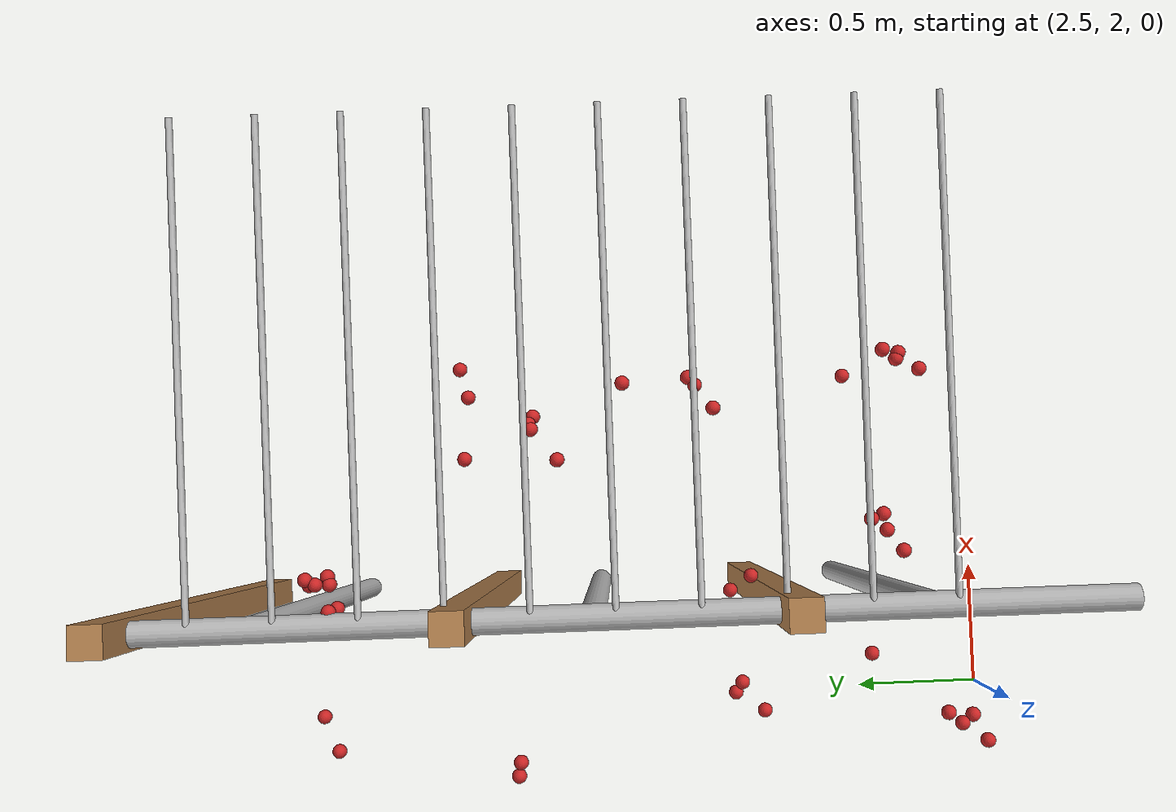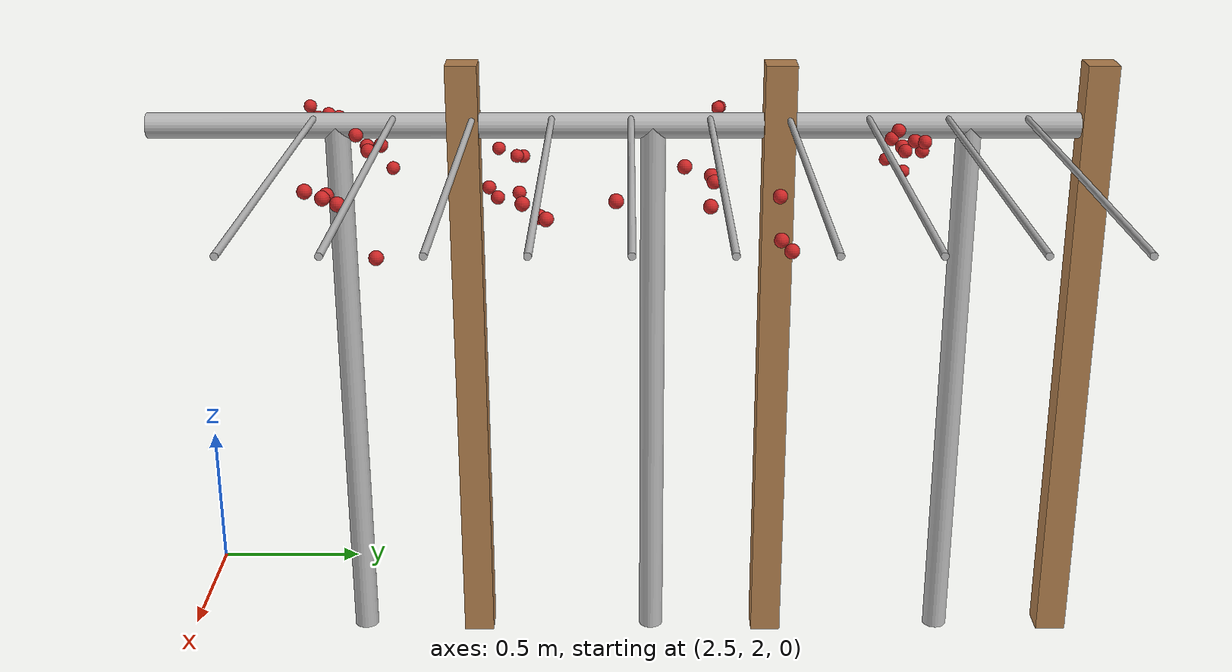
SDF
<sdf version="1.4">
 <model name="pergola">
  <include><name>post_9</name><pose>3.0 3.0 0 0 0 0</pose><uri>model://post</uri></include>
  <include><name>post_10</name><pose>3.0 4.0 0 0 0 0</pose><uri>model://post</uri></include>
  <include><name>post_11</name><pose>3.0 5.0 0 0 0 0</pose><uri>model://post</uri></include>
  <include><name>tree_7</name><pose>3.0 2.6 0 0 0 0</pose><uri>model://tree_trunk</uri></include>
  <include><name>tree_8</name><pose>3.0 3.6 0 0 0 0</pose><uri>model://tree_trunk</uri></include>
  <include><name>tree_9</name><pose>3.0 4.6 0 0 0 0</pose><uri>model://tree_trunk</uri></include>
  <link name="baseBranch_7">
   <pose>3.0 2.5 1.8 1.5707963267948966 0 0</pose>
   <collision name="collision">
    <geometry><cylinder><radius>0.04</radius><length>1.0</length></cylinder></geometry>
   </collision>
   <visual name="visual">
    <geometry><cylinder><radius>0.04</radius><length>1.0</length></cylinder></geometry>
    <material>
     <script>
      <uri>model://tree_trunk/materials/scripts</uri>
      <uri>model://tree_trunk/materials/textures</uri>
      <name>Tree/Bark</name>
     </script>
    </material>
   </visual>
   <inertial>
    <mass>10</mass>
    <inertia>
     <ixx>0.8373333333333332</ixx>
     <ixy>0.0</ixy>
     <ixz>0.0</ixz>
     <iyy>0.8373333333333332</iyy>
     <iyz>0.0</iyz>
     <izz>0.008</izz>
    </inertia>
   </inertial>
  </link>
  <link name="baseBranch_8">
   <pose>3.0 3.5 1.8 1.5707963267948966 0 0</pose>
   <collision name="collision">
    <geometry><cylinder><radius>0.04</radius><length>1.0</length></cylinder></geometry>
   </collision>
   <visual name="visual">
    <geometry><cylinder><radius>0.04</radius><length>1.0</length></cylinder></geometry>
    <material>
     <script>
      <uri>model://tree_trunk/materials/scripts</uri>
      <uri>model://tree_trunk/materials/textures</uri>
      <name>Tree/Bark</name>
     </script>
    </material>
   </visual>
   <inertial>
    <mass>10</mass>
    <inertia>
     <ixx>0.8373333333333332</ixx>
     <ixy>0.0</ixy>
     <ixz>0.0</ixz>
     <iyy>0.8373333333333332</iyy>
     <iyz>0.0</iyz>
     <izz>0.008</izz>
    </inertia>
   </inertial>
  </link>
  <link name="baseBranch_9">
   <pose>3.0 4.5 1.8 1.5707963267948966 0 0</pose>
   <collision name="collision">
    <geometry><cylinder><radius>0.04</radius><length>1.0</length></cylinder></geometry>
   </collision>
   <visual name="visual">
    <geometry><cylinder><radius>0.04</radius><length>1.0</length></cylinder></geometry>
    <material>
     <script>
      <uri>model://tree_trunk/materials/scripts</uri>
      <uri>model://tree_trunk/materials/textures</uri>
      <name>Tree/Bark</name>
     </script>
    </material>
   </visual>
   <inertial>
    <mass>10</mass>
    <inertia>
     <ixx>0.8373333333333332</ixx>
     <ixy>0.0</ixy>
     <ixz>0.0</ixz>
     <iyy>0.8373333333333332</iyy>
     <iyz>0.0</iyz>
     <izz>0.008</izz>
    </inertia>
   </inertial>
  </link>
  <link name="vine_60">
   <pose>3.75 2.53 1.85 0 1.5374753309166493 0</pose>
   <collision name="collision">
    <geometry><cylinder><radius>0.01</radius><length>1.5008331019803633</length></cylinder></geometry>
   </collision>
   <visual name="visual">
    <geometry><cylinder><radius>0.01</radius><length>1.5008331019803633</length></cylinder></geometry>
    <material>
     <script>
      <uri>model://tree_trunk/materials/scripts</uri>
      <uri>model://tree_trunk/materials/textures</uri>
      <name>Tree/Bark</name>
     </script>
    </material>
   </visual>
   <inertial>
    <mass>5</mass>
    <inertia>
     <ixx>0.9386666666666668</ixx>
     <ixy>0.0</ixy>
     <ixz>0.0</ixz>
     <iyy>0.9386666666666668</iyy>
     <iyz>0.0</iyz>
     <izz>0.00025</izz>
    </inertia>
   </inertial>
  </link>
  <link name="vine_62">
   <pose>3.75 2.78 1.85 0 1.5374753309166493 0</pose>
   <collision name="collision">
    <geometry><cylinder><radius>0.01</radius><length>1.5008331019803633</length></cylinder></geometry>
   </collision>
   <visual name="visual">
    <geometry><cylinder><radius>0.01</radius><length>1.5008331019803633</length></cylinder></geometry>
    <material>
     <script>
      <uri>model://tree_trunk/materials/scripts</uri>
      <uri>model://tree_trunk/materials/textures</uri>
      <name>Tree/Bark</name>
     </script>
    </material>
   </visual>
   <inertial>
    <mass>5</mass>
    <inertia>
     <ixx>0.9386666666666668</ixx>
     <ixy>0.0</ixy>
     <ixz>0.0</ixz>
     <iyy>0.9386666666666668</iyy>
     <iyz>0.0</iyz>
     <izz>0.00025</izz>
    </inertia>
   </inertial>
  </link>
  <link name="vine_64">
   <pose>3.75 3.03 1.85 0 1.5374753309166493 0</pose>
   <collision name="collision">
    <geometry><cylinder><radius>0.01</radius><length>1.5008331019803633</length></cylinder></geometry>
   </collision>
   <visual name="visual">
    <geometry><cylinder><radius>0.01</radius><length>1.5008331019803633</length></cylinder></geometry>
    <material>
     <script>
      <uri>model://tree_trunk/materials/scripts</uri>
      <uri>model://tree_trunk/materials/textures</uri>
      <name>Tree/Bark</name>
     </script>
    </material>
   </visual>
   <inertial>
    <mass>5</mass>
    <inertia>
     <ixx>0.9386666666666668</ixx>
     <ixy>0.0</ixy>
     <ixz>0.0</ixz>
     <iyy>0.9386666666666668</iyy>
     <iyz>0.0</iyz>
     <izz>0.00025</izz>
    </inertia>
   </inertial>
  </link>
  <link name="vine_66">
   <pose>3.75 3.28 1.85 0 1.5374753309166493 0</pose>
   <collision name="collision">
    <geometry><cylinder><radius>0.01</radius><length>1.5008331019803633</length></cylinder></geometry>
   </collision>
   <visual name="visual">
    <geometry><cylinder><radius>0.01</radius><length>1.5008331019803633</length></cylinder></geometry>
    <material>
     <script>
      <uri>model://tree_trunk/materials/scripts</uri>
      <uri>model://tree_trunk/materials/textures</uri>
      <name>Tree/Bark</name>
     </script>
    </material>
   </visual>
   <inertial>
    <mass>5</mass>
    <inertia>
     <ixx>0.9386666666666668</ixx>
     <ixy>0.0</ixy>
     <ixz>0.0</ixz>
     <iyy>0.9386666666666668</iyy>
     <iyz>0.0</iyz>
     <izz>0.00025</izz>
    </inertia>
   </inertial>
  </link>
  <link name="vine_68">
   <pose>3.75 3.53 1.85 0 1.5374753309166493 0</pose>
   <collision name="collision">
    <geometry><cylinder><radius>0.01</radius><length>1.5008331019803633</length></cylinder></geometry>
   </collision>
   <visual name="visual">
    <geometry><cylinder><radius>0.01</radius><length>1.5008331019803633</length></cylinder></geometry>
    <material>
     <script>
      <uri>model://tree_trunk/materials/scripts</uri>
      <uri>model://tree_trunk/materials/textures</uri>
      <name>Tree/Bark</name>
     </script>
    </material>
   </visual>
   <inertial>
    <mass>5</mass>
    <inertia>
     <ixx>0.9386666666666668</ixx>
     <ixy>0.0</ixy>
     <ixz>0.0</ixz>
     <iyy>0.9386666666666668</iyy>
     <iyz>0.0</iyz>
     <izz>0.00025</izz>
    </inertia>
   </inertial>
  </link>
  <link name="vine_70">
   <pose>3.75 3.78 1.85 0 1.5374753309166493 0</pose>
   <collision name="collision">
    <geometry><cylinder><radius>0.01</radius><length>1.5008331019803633</length></cylinder></geometry>
   </collision>
   <visual name="visual">
    <geometry><cylinder><radius>0.01</radius><length>1.5008331019803633</length></cylinder></geometry>
    <material>
     <script>
      <uri>model://tree_trunk/materials/scripts</uri>
      <uri>model://tree_trunk/materials/textures</uri>
      <name>Tree/Bark</name>
     </script>
    </material>
   </visual>
   <inertial>
    <mass>5</mass>
    <inertia>
     <ixx>0.9386666666666668</ixx>
     <ixy>0.0</ixy>
     <ixz>0.0</ixz>
     <iyy>0.9386666666666668</iyy>
     <iyz>0.0</iyz>
     <izz>0.00025</izz>
    </inertia>
   </inertial>
  </link>
  <link name="vine_72">
   <pose>3.75 4.03 1.85 0 1.5374753309166493 0</pose>
   <collision name="collision">
    <geometry><cylinder><radius>0.01</radius><length>1.5008331019803633</length></cylinder></geometry>
   </collision>
   <visual name="visual">
    <geometry><cylinder><radius>0.01</radius><length>1.5008331019803633</length></cylinder></geometry>
    <material>
     <script>
      <uri>model://tree_trunk/materials/scripts</uri>
      <uri>model://tree_trunk/materials/textures</uri>
      <name>Tree/Bark</name>
     </script>
    </material>
   </visual>
   <inertial>
    <mass>5</mass>
    <inertia>
     <ixx>0.9386666666666668</ixx>
     <ixy>0.0</ixy>
     <ixz>0.0</ixz>
     <iyy>0.9386666666666668</iyy>
     <iyz>0.0</iyz>
     <izz>0.00025</izz>
    </inertia>
   </inertial>
  </link>
  <link name="vine_74">
   <pose>3.75 4.28 1.85 0 1.5374753309166493 0</pose>
   <collision name="collision">
    <geometry><cylinder><radius>0.01</radius><length>1.5008331019803633</length></cylinder></geometry>
   </collision>
   <visual name="visual">
    <geometry><cylinder><radius>0.01</radius><length>1.5008331019803633</length></cylinder></geometry>
    <material>
     <script>
      <uri>model://tree_trunk/materials/scripts</uri>
      <uri>model://tree_trunk/materials/textures</uri>
      <name>Tree/Bark</name>
     </script>
    </material>
   </visual>
   <inertial>
    <mass>5</mass>
    <inertia>
     <ixx>0.9386666666666668</ixx>
     <ixy>0.0</ixy>
     <ixz>0.0</ixz>
     <iyy>0.9386666666666668</iyy>
     <iyz>0.0</iyz>
     <izz>0.00025</izz>
    </inertia>
   </inertial>
  </link>
  <link name="vine_76">
   <pose>3.75 4.53 1.85 0 1.5374753309166493 0</pose>
   <collision name="collision">
    <geometry><cylinder><radius>0.01</radius><length>1.5008331019803633</length></cylinder></geometry>
   </collision>
   <visual name="visual">
    <geometry><cylinder><radius>0.01</radius><length>1.5008331019803633</length></cylinder></geometry>
    <material>
     <script>
      <uri>model://tree_trunk/materials/scripts</uri>
      <uri>model://tree_trunk/materials/textures</uri>
      <name>Tree/Bark</name>
     </script>
    </material>
   </visual>
   <inertial>
    <mass>5</mass>
    <inertia>
     <ixx>0.9386666666666668</ixx>
     <ixy>0.0</ixy>
     <ixz>0.0</ixz>
     <iyy>0.9386666666666668</iyy>
     <iyz>0.0</iyz>
     <izz>0.00025</izz>
    </inertia>
   </inertial>
  </link>
  <link name="vine_78">
   <pose>3.75 4.78 1.85 0 1.5374753309166493 0</pose>
   <collision name="collision">
    <geometry><cylinder><radius>0.01</radius><length>1.5008331019803633</length></cylinder></geometry>
   </collision>
   <visual name="visual">
    <geometry><cylinder><radius>0.01</radius><length>1.5008331019803633</length></cylinder></geometry>
    <material>
     <script>
      <uri>model://tree_trunk/materials/scripts</uri>
      <uri>model://tree_trunk/materials/textures</uri>
      <name>Tree/Bark</name>
     </script>
    </material>
   </visual>
   <inertial>
    <mass>5</mass>
    <inertia>
     <ixx>0.9386666666666668</ixx>
     <ixy>0.0</ixy>
     <ixz>0.0</ixz>
     <iyy>0.9386666666666668</iyy>
     <iyz>0.0</iyz>
     <izz>0.00025</izz>
    </inertia>
   </inertial>
  </link>
  <link name="fruit_1">
   <pose>2.8404596890096316 2.7504183131941358 1.6137637719881317 0 0 0</pose>
   <collision name="fruit_collision_1"><geometry><sphere><radius>0.022</radius></sphere></geometry></collision>
   <visual name="visual">
    <geometry><sphere><radius>0.022</radius></sphere></geometry>
    <material><script><name>Gazebo/Red</name></script></material>
   </visual>
   <inertial>
    <mass>0.05</mass>
    <inertia>
     <ixx>9.679999999999999e-06</ixx>
     <ixy>0.0</ixy>
     <ixz>0.0</ixz>
     <iyy>9.679999999999999e-06</iyy>
     <iyz>0.0</iyz>
     <izz>9.679999999999999e-06</izz>
    </inertia>
   </inertial>
   <sensor name="fruit_contact_1" type="contact">
    <plugin name="contact_plugin_1" filename="libcontact_plugin.so"/>
    <contact><collision>fruit_collision_1</collision><topic>fruit_contact_topic_1</topic></contact>
   </sensor>
  </link>
  <link name="fruit_39">
   <pose>3.1608196033691667 2.6821426553138044 1.811208368263747 0 0 0</pose>
   <collision name="fruit_collision_39"><geometry><sphere><radius>0.022</radius></sphere></geometry></collision>
   <visual name="visual">
    <geometry><sphere><radius>0.022</radius></sphere></geometry>
    <material><script><name>Gazebo/Red</name></script></material>
   </visual>
   <inertial>
    <mass>0.05</mass>
    <inertia>
     <ixx>9.679999999999999e-06</ixx>
     <ixy>0.0</ixy>
     <ixz>0.0</ixz>
     <iyy>9.679999999999999e-06</iyy>
     <iyz>0.0</iyz>
     <izz>9.679999999999999e-06</izz>
    </inertia>
   </inertial>
   <sensor name="fruit_contact_39" type="contact">
    <plugin name="contact_plugin_39" filename="libcontact_plugin.so"/>
    <contact><collision>fruit_collision_39</collision><topic>fruit_contact_topic_39</topic></contact>
   </sensor>
  </link>
  <link name="fruit_41">
   <pose>3.693520088226629 2.6087132468782963 1.7918743351676032 0 0 0</pose>
   <collision name="fruit_collision_41"><geometry><sphere><radius>0.022</radius></sphere></geometry></collision>
   <visual name="visual">
    <geometry><sphere><radius>0.022</radius></sphere></geometry>
    <material><script><name>Gazebo/Red</name></script></material>
   </visual>
   <inertial>
    <mass>0.05</mass>
    <inertia>
     <ixx>9.679999999999999e-06</ixx>
     <ixy>0.0</ixy>
     <ixz>0.0</ixz>
     <iyy>9.679999999999999e-06</iyy>
     <iyz>0.0</iyz>
     <izz>9.679999999999999e-06</izz>
    </inertia>
   </inertial>
   <sensor name="fruit_contact_41" type="contact">
    <plugin name="contact_plugin_41" filename="libcontact_plugin.so"/>
    <contact><collision>fruit_collision_41</collision><topic>fruit_contact_topic_41</topic></contact>
   </sensor>
  </link>
  <link name="fruit_49">
   <pose>3.5982800474163854 3.759283060290533 1.7176966146065369 0 0 0</pose>
   <collision name="fruit_collision_49"><geometry><sphere><radius>0.022</radius></sphere></geometry></collision>
   <visual name="visual">
    <geometry><sphere><radius>0.022</radius></sphere></geometry>
    <material><script><name>Gazebo/Red</name></script></material>
   </visual>
   <inertial>
    <mass>0.05</mass>
    <inertia>
     <ixx>9.679999999999999e-06</ixx>
     <ixy>0.0</ixy>
     <ixz>0.0</ixz>
     <iyy>9.679999999999999e-06</iyy>
     <iyz>0.0</iyz>
     <izz>9.679999999999999e-06</izz>
    </inertia>
   </inertial>
   <sensor name="fruit_contact_49" type="contact">
    <plugin name="contact_plugin_49" filename="libcontact_plugin.so"/>
    <contact><collision>fruit_collision_49</collision><topic>fruit_contact_topic_49</topic></contact>
   </sensor>
  </link>
  <link name="fruit_61">
   <pose>2.684382361629287 3.0879324090077183 1.637041034215435 0 0 0</pose>
   <collision name="fruit_collision_61"><geometry><sphere><radius>0.022</radius></sphere></geometry></collision>
   <visual name="visual">
    <geometry><sphere><radius>0.022</radius></sphere></geometry>
    <material><script><name>Gazebo/Red</name></script></material>
   </visual>
   <inertial>
    <mass>0.05</mass>
    <inertia>
     <ixx>9.679999999999999e-06</ixx>
     <ixy>0.0</ixy>
     <ixz>0.0</ixz>
     <iyy>9.679999999999999e-06</iyy>
     <iyz>0.0</iyz>
     <izz>9.679999999999999e-06</izz>
    </inertia>
   </inertial>
   <sensor name="fruit_contact_61" type="contact">
    <plugin name="contact_plugin_61" filename="libcontact_plugin.so"/>
    <contact><collision>fruit_collision_61</collision><topic>fruit_contact_topic_61</topic></contact>
   </sensor>
  </link>
  <link name="fruit_64">
   <pose>3.0426437467870984 4.372590305260636 1.7936738148537774 0 0 0</pose>
   <collision name="fruit_collision_64"><geometry><sphere><radius>0.022</radius></sphere></geometry></collision>
   <visual name="visual">
    <geometry><sphere><radius>0.022</radius></sphere></geometry>
    <material><script><name>Gazebo/Red</name></script></material>
   </visual>
   <inertial>
    <mass>0.05</mass>
    <inertia>
     <ixx>9.679999999999999e-06</ixx>
     <ixy>0.0</ixy>
     <ixz>0.0</ixz>
     <iyy>9.679999999999999e-06</iyy>
     <iyz>0.0</iyz>
     <izz>9.679999999999999e-06</izz>
    </inertia>
   </inertial>
   <sensor name="fruit_contact_64" type="contact">
    <plugin name="contact_plugin_64" filename="libcontact_plugin.so"/>
    <contact><collision>fruit_collision_64</collision><topic>fruit_contact_topic_64</topic></contact>
   </sensor>
  </link>
  <link name="fruit_78">
   <pose>2.995093963616755 3.075712080354329 1.5941749955122186 0 0 0</pose>
   <collision name="fruit_collision_78"><geometry><sphere><radius>0.022</radius></sphere></geometry></collision>
   <visual name="visual">
    <geometry><sphere><radius>0.022</radius></sphere></geometry>
    <material><script><name>Gazebo/Red</name></script></material>
   </visual>
   <inertial>
    <mass>0.05</mass>
    <inertia>
     <ixx>9.679999999999999e-06</ixx>
     <ixy>0.0</ixy>
     <ixz>0.0</ixz>
     <iyy>9.679999999999999e-06</iyy>
     <iyz>0.0</iyz>
     <izz>9.679999999999999e-06</izz>
    </inertia>
   </inertial>
   <sensor name="fruit_contact_78" type="contact">
    <plugin name="contact_plugin_78" filename="libcontact_plugin.so"/>
    <contact><collision>fruit_collision_78</collision><topic>fruit_contact_topic_78</topic></contact>
   </sensor>
  </link>
  <link name="fruit_90">
   <pose>2.5960231432027387 4.400098978361522 1.5735579816886696 0 0 0</pose>
   <collision name="fruit_collision_90"><geometry><sphere><radius>0.022</radius></sphere></geometry></collision>
   <visual name="visual">
    <geometry><sphere><radius>0.022</radius></sphere></geometry>
    <material><script><name>Gazebo/Red</name></script></material>
   </visual>
   <inertial>
    <mass>0.05</mass>
    <inertia>
     <ixx>9.679999999999999e-06</ixx>
     <ixy>0.0</ixy>
     <ixz>0.0</ixz>
     <iyy>9.679999999999999e-06</iyy>
     <iyz>0.0</iyz>
     <izz>9.679999999999999e-06</izz>
    </inertia>
   </inertial>
   <sensor name="fruit_contact_90" type="contact">
    <plugin name="contact_plugin_90" filename="libcontact_plugin.so"/>
    <contact><collision>fruit_collision_90</collision><topic>fruit_contact_topic_90</topic></contact>
   </sensor>
  </link>
  <link name="fruit_92">
   <pose>3.4637191765406943 3.6870472003649017 1.7978415874742324 0 0 0</pose>
   <collision name="fruit_collision_92"><geometry><sphere><radius>0.022</radius></sphere></geometry></collision>
   <visual name="visual">
    <geometry><sphere><radius>0.022</radius></sphere></geometry>
    <material><script><name>Gazebo/Red</name></script></material>
   </visual>
   <inertial>
    <mass>0.05</mass>
    <inertia>
     <ixx>9.679999999999999e-06</ixx>
     <ixy>0.0</ixy>
     <ixz>0.0</ixz>
     <iyy>9.679999999999999e-06</iyy>
     <iyz>0.0</iyz>
     <izz>9.679999999999999e-06</izz>
    </inertia>
   </inertial>
   <sensor name="fruit_contact_92" type="contact">
    <plugin name="contact_plugin_92" filename="libcontact_plugin.so"/>
    <contact><collision>fruit_collision_92</collision><topic>fruit_contact_topic_92</topic></contact>
   </sensor>
  </link>
  <link name="fruit_105">
   <pose>2.592701083632063 2.4482701544165413 1.7583066825265756 0 0 0</pose>
   <collision name="fruit_collision_105"><geometry><sphere><radius>0.022</radius></sphere></geometry></collision>
   <visual name="visual">
    <geometry><sphere><radius>0.022</radius></sphere></geometry>
    <material><script><name>Gazebo/Red</name></script></material>
   </visual>
   <inertial>
    <mass>0.05</mass>
    <inertia>
     <ixx>9.679999999999999e-06</ixx>
     <ixy>0.0</ixy>
     <ixz>0.0</ixz>
     <iyy>9.679999999999999e-06</iyy>
     <iyz>0.0</iyz>
     <izz>9.679999999999999e-06</izz>
    </inertia>
   </inertial>
   <sensor name="fruit_contact_105" type="contact">
    <plugin name="contact_plugin_105" filename="libcontact_plugin.so"/>
    <contact><collision>fruit_collision_105</collision><topic>fruit_contact_topic_105</topic></contact>
   </sensor>
  </link>
  <link name="fruit_116">
   <pose>3.6983098700964603 2.80178253190273 1.5960840665155585 0 0 0</pose>
   <collision name="fruit_collision_116"><geometry><sphere><radius>0.022</radius></sphere></geometry></collision>
   <visual name="visual">
    <geometry><sphere><radius>0.022</radius></sphere></geometry>
    <material><script><name>Gazebo/Red</name></script></material>
   </visual>
   <inertial>
    <mass>0.05</mass>
    <inertia>
     <ixx>9.679999999999999e-06</ixx>
     <ixy>0.0</ixy>
     <ixz>0.0</ixz>
     <iyy>9.679999999999999e-06</iyy>
     <iyz>0.0</iyz>
     <izz>9.679999999999999e-06</izz>
    </inertia>
   </inertial>
   <sensor name="fruit_contact_116" type="contact">
    <plugin name="contact_plugin_116" filename="libcontact_plugin.so"/>
    <contact><collision>fruit_collision_116</collision><topic>fruit_contact_topic_116</topic></contact>
   </sensor>
  </link>
  <link name="fruit_117">
   <pose>3.0498818248173087 4.351036431240473 1.769379938558252 0 0 0</pose>
   <collision name="fruit_collision_117"><geometry><sphere><radius>0.022</radius></sphere></geometry></collision>
   <visual name="visual">
    <geometry><sphere><radius>0.022</radius></sphere></geometry>
    <material><script><name>Gazebo/Red</name></script></material>
   </visual>
   <inertial>
    <mass>0.05</mass>
    <inertia>
     <ixx>9.679999999999999e-06</ixx>
     <ixy>0.0</ixy>
     <ixz>0.0</ixz>
     <iyy>9.679999999999999e-06</iyy>
     <iyz>0.0</iyz>
     <izz>9.679999999999999e-06</izz>
    </inertia>
   </inertial>
   <sensor name="fruit_contact_117" type="contact">
    <plugin name="contact_plugin_117" filename="libcontact_plugin.so"/>
    <contact><collision>fruit_collision_117</collision><topic>fruit_contact_topic_117</topic></contact>
   </sensor>
  </link>
  <link name="fruit_119">
   <pose>3.478249519949547 3.969041377311514 1.7111438282597309 0 0 0</pose>
   <collision name="fruit_collision_119"><geometry><sphere><radius>0.022</radius></sphere></geometry></collision>
   <visual name="visual">
    <geometry><sphere><radius>0.022</radius></sphere></geometry>
    <material><script><name>Gazebo/Red</name></script></material>
   </visual>
   <inertial>
    <mass>0.05</mass>
    <inertia>
     <ixx>9.679999999999999e-06</ixx>
     <ixy>0.0</ixy>
     <ixz>0.0</ixz>
     <iyy>9.679999999999999e-06</iyy>
     <iyz>0.0</iyz>
     <izz>9.679999999999999e-06</izz>
    </inertia>
   </inertial>
   <sensor name="fruit_contact_119" type="contact">
    <plugin name="contact_plugin_119" filename="libcontact_plugin.so"/>
    <contact><collision>fruit_collision_119</collision><topic>fruit_contact_topic_119</topic></contact>
   </sensor>
  </link>
  <link name="fruit_120">
   <pose>3.6864415566833038 3.4872838351079904 1.7611793115392007 0 0 0</pose>
   <collision name="fruit_collision_120"><geometry><sphere><radius>0.022</radius></sphere></geometry></collision>
   <visual name="visual">
    <geometry><sphere><radius>0.022</radius></sphere></geometry>
    <material><script><name>Gazebo/Red</name></script></material>
   </visual>
   <inertial>
    <mass>0.05</mass>
    <inertia>
     <ixx>9.679999999999999e-06</ixx>
     <ixy>0.0</ixy>
     <ixz>0.0</ixz>
     <iyy>9.679999999999999e-06</iyy>
     <iyz>0.0</iyz>
     <izz>9.679999999999999e-06</izz>
    </inertia>
   </inertial>
   <sensor name="fruit_contact_120" type="contact">
    <plugin name="contact_plugin_120" filename="libcontact_plugin.so"/>
    <contact><collision>fruit_collision_120</collision><topic>fruit_contact_topic_120</topic></contact>
   </sensor>
  </link>
  <link name="fruit_132">
   <pose>3.6702591061425687 3.9604607793327293 1.6395119791104396 0 0 0</pose>
   <collision name="fruit_collision_132"><geometry><sphere><radius>0.022</radius></sphere></geometry></collision>
   <visual name="visual">
    <geometry><sphere><radius>0.022</radius></sphere></geometry>
    <material><script><name>Gazebo/Red</name></script></material>
   </visual>
   <inertial>
    <mass>0.05</mass>
    <inertia>
     <ixx>9.679999999999999e-06</ixx>
     <ixy>0.0</ixy>
     <ixz>0.0</ixz>
     <iyy>9.679999999999999e-06</iyy>
     <iyz>0.0</iyz>
     <izz>9.679999999999999e-06</izz>
    </inertia>
   </inertial>
   <sensor name="fruit_contact_132" type="contact">
    <plugin name="contact_plugin_132" filename="libcontact_plugin.so"/>
    <contact><collision>fruit_collision_132</collision><topic>fruit_contact_topic_132</topic></contact>
   </sensor>
  </link>
  <link name="fruit_153">
   <pose>3.6044771499270003 3.216763925545594 1.7281262052518453 0 0 0</pose>
   <collision name="fruit_collision_153"><geometry><sphere><radius>0.022</radius></sphere></geometry></collision>
   <visual name="visual">
    <geometry><sphere><radius>0.022</radius></sphere></geometry>
    <material><script><name>Gazebo/Red</name></script></material>
   </visual>
   <inertial>
    <mass>0.05</mass>
    <inertia>
     <ixx>9.679999999999999e-06</ixx>
     <ixy>0.0</ixy>
     <ixz>0.0</ixz>
     <iyy>9.679999999999999e-06</iyy>
     <iyz>0.0</iyz>
     <izz>9.679999999999999e-06</izz>
    </inertia>
   </inertial>
   <sensor name="fruit_contact_153" type="contact">
    <plugin name="contact_plugin_153" filename="libcontact_plugin.so"/>
    <contact><collision>fruit_collision_153</collision><topic>fruit_contact_topic_153</topic></contact>
   </sensor>
  </link>
  <link name="fruit_155">
   <pose>3.7565413817956825 2.709785434835065 1.7740847037381535 0 0 0</pose>
   <collision name="fruit_collision_155"><geometry><sphere><radius>0.022</radius></sphere></geometry></collision>
   <visual name="visual">
    <geometry><sphere><radius>0.022</radius></sphere></geometry>
    <material><script><name>Gazebo/Red</name></script></material>
   </visual>
   <inertial>
    <mass>0.05</mass>
    <inertia>
     <ixx>9.679999999999999e-06</ixx>
     <ixy>0.0</ixy>
     <ixz>0.0</ixz>
     <iyy>9.679999999999999e-06</iyy>
     <iyz>0.0</iyz>
     <izz>9.679999999999999e-06</izz>
    </inertia>
   </inertial>
   <sensor name="fruit_contact_155" type="contact">
    <plugin name="contact_plugin_155" filename="libcontact_plugin.so"/>
    <contact><collision>fruit_collision_155</collision><topic>fruit_contact_topic_155</topic></contact>
   </sensor>
  </link>
  <link name="fruit_175">
   <pose>2.6661181144551143 2.483787317141717 1.7394267165555057 0 0 0</pose>
   <collision name="fruit_collision_175"><geometry><sphere><radius>0.022</radius></sphere></geometry></collision>
   <visual name="visual">
    <geometry><sphere><radius>0.022</radius></sphere></geometry>
    <material><script><name>Gazebo/Red</name></script></material>
   </visual>
   <inertial>
    <mass>0.05</mass>
    <inertia>
     <ixx>9.679999999999999e-06</ixx>
     <ixy>0.0</ixy>
     <ixz>0.0</ixz>
     <iyy>9.679999999999999e-06</iyy>
     <iyz>0.0</iyz>
     <izz>9.679999999999999e-06</izz>
    </inertia>
   </inertial>
   <sensor name="fruit_contact_175" type="contact">
    <plugin name="contact_plugin_175" filename="libcontact_plugin.so"/>
    <contact><collision>fruit_collision_175</collision><topic>fruit_contact_topic_175</topic></contact>
   </sensor>
  </link>
  <link name="fruit_182">
   <pose>2.6747563145880444 2.556280349706432 1.7431316514268471 0 0 0</pose>
   <collision name="fruit_collision_182"><geometry><sphere><radius>0.022</radius></sphere></geometry></collision>
   <visual name="visual">
    <geometry><sphere><radius>0.022</radius></sphere></geometry>
    <material><script><name>Gazebo/Red</name></script></material>
   </visual>
   <inertial>
    <mass>0.05</mass>
    <inertia>
     <ixx>9.679999999999999e-06</ixx>
     <ixy>0.0</ixy>
     <ixz>0.0</ixz>
     <iyy>9.679999999999999e-06</iyy>
     <iyz>0.0</iyz>
     <izz>9.679999999999999e-06</izz>
    </inertia>
   </inertial>
   <sensor name="fruit_contact_182" type="contact">
    <plugin name="contact_plugin_182" filename="libcontact_plugin.so"/>
    <contact><collision>fruit_collision_182</collision><topic>fruit_contact_topic_182</topic></contact>
   </sensor>
  </link>
  <link name="fruit_193">
   <pose>2.7397614258253697 3.1729722323586413 1.625358807292208 0 0 0</pose>
   <collision name="fruit_collision_193"><geometry><sphere><radius>0.022</radius></sphere></geometry></collision>
   <visual name="visual">
    <geometry><sphere><radius>0.022</radius></sphere></geometry>
    <material><script><name>Gazebo/Red</name></script></material>
   </visual>
   <inertial>
    <mass>0.05</mass>
    <inertia>
     <ixx>9.679999999999999e-06</ixx>
     <ixy>0.0</ixy>
     <ixz>0.0</ixz>
     <iyy>9.679999999999999e-06</iyy>
     <iyz>0.0</iyz>
     <izz>9.679999999999999e-06</izz>
    </inertia>
   </inertial>
   <sensor name="fruit_contact_193" type="contact">
    <plugin name="contact_plugin_193" filename="libcontact_plugin.so"/>
    <contact><collision>fruit_collision_193</collision><topic>fruit_contact_topic_193</topic></contact>
   </sensor>
  </link>
  <link name="fruit_210">
   <pose>3.1198911081103993 4.436996948745939 1.7495879150189233 0 0 0</pose>
   <collision name="fruit_collision_210"><geometry><sphere><radius>0.022</radius></sphere></geometry></collision>
   <visual name="visual">
    <geometry><sphere><radius>0.022</radius></sphere></geometry>
    <material><script><name>Gazebo/Red</name></script></material>
   </visual>
   <inertial>
    <mass>0.05</mass>
    <inertia>
     <ixx>9.679999999999999e-06</ixx>
     <ixy>0.0</ixy>
     <ixz>0.0</ixz>
     <iyy>9.679999999999999e-06</iyy>
     <iyz>0.0</iyz>
     <izz>9.679999999999999e-06</izz>
    </inertia>
   </inertial>
   <sensor name="fruit_contact_210" type="contact">
    <plugin name="contact_plugin_210" filename="libcontact_plugin.so"/>
    <contact><collision>fruit_collision_210</collision><topic>fruit_contact_topic_210</topic></contact>
   </sensor>
  </link>
  <link name="fruit_214">
   <pose>2.771052073645757 3.1531881053304778 1.6353907765192297 0 0 0</pose>
   <collision name="fruit_collision_214"><geometry><sphere><radius>0.022</radius></sphere></geometry></collision>
   <visual name="visual">
    <geometry><sphere><radius>0.022</radius></sphere></geometry>
    <material><script><name>Gazebo/Red</name></script></material>
   </visual>
   <inertial>
    <mass>0.05</mass>
    <inertia>
     <ixx>9.679999999999999e-06</ixx>
     <ixy>0.0</ixy>
     <ixz>0.0</ixz>
     <iyy>9.679999999999999e-06</iyy>
     <iyz>0.0</iyz>
     <izz>9.679999999999999e-06</izz>
    </inertia>
   </inertial>
   <sensor name="fruit_contact_214" type="contact">
    <plugin name="contact_plugin_214" filename="libcontact_plugin.so"/>
    <contact><collision>fruit_collision_214</collision><topic>fruit_contact_topic_214</topic></contact>
   </sensor>
  </link>
  <link name="fruit_218">
   <pose>3.5727516832720783 3.7691655702842315 1.7847965401025447 0 0 0</pose>
   <collision name="fruit_collision_218"><geometry><sphere><radius>0.022</radius></sphere></geometry></collision>
   <visual name="visual">
    <geometry><sphere><radius>0.022</radius></sphere></geometry>
    <material><script><name>Gazebo/Red</name></script></material>
   </visual>
   <inertial>
    <mass>0.05</mass>
    <inertia>
     <ixx>9.679999999999999e-06</ixx>
     <ixy>0.0</ixy>
     <ixz>0.0</ixz>
     <iyy>9.679999999999999e-06</iyy>
     <iyz>0.0</iyz>
     <izz>9.679999999999999e-06</izz>
    </inertia>
   </inertial>
   <sensor name="fruit_contact_218" type="contact">
    <plugin name="contact_plugin_218" filename="libcontact_plugin.so"/>
    <contact><collision>fruit_collision_218</collision><topic>fruit_contact_topic_218</topic></contact>
   </sensor>
  </link>
  <link name="fruit_259">
   <pose>3.7443063621430577 2.6668695740422272 1.7875789246664233 0 0 0</pose>
   <collision name="fruit_collision_259"><geometry><sphere><radius>0.022</radius></sphere></geometry></collision>
   <visual name="visual">
    <geometry><sphere><radius>0.022</radius></sphere></geometry>
    <material><script><name>Gazebo/Red</name></script></material>
   </visual>
   <inertial>
    <mass>0.05</mass>
    <inertia>
     <ixx>9.679999999999999e-06</ixx>
     <ixy>0.0</ixy>
     <ixz>0.0</ixz>
     <iyy>9.679999999999999e-06</iyy>
     <iyz>0.0</iyz>
     <izz>9.679999999999999e-06</izz>
    </inertia>
   </inertial>
   <sensor name="fruit_contact_259" type="contact">
    <plugin name="contact_plugin_259" filename="libcontact_plugin.so"/>
    <contact><collision>fruit_collision_259</collision><topic>fruit_contact_topic_259</topic></contact>
   </sensor>
  </link>
  <link name="fruit_269">
   <pose>3.2220719041680237 2.724253184054165 1.7936262274992747 0 0 0</pose>
   <collision name="fruit_collision_269"><geometry><sphere><radius>0.022</radius></sphere></geometry></collision>
   <visual name="visual">
    <geometry><sphere><radius>0.022</radius></sphere></geometry>
    <material><script><name>Gazebo/Red</name></script></material>
   </visual>
   <inertial>
    <mass>0.05</mass>
    <inertia>
     <ixx>9.679999999999999e-06</ixx>
     <ixy>0.0</ixy>
     <ixz>0.0</ixz>
     <iyy>9.679999999999999e-06</iyy>
     <iyz>0.0</iyz>
     <izz>9.679999999999999e-06</izz>
    </inertia>
   </inertial>
   <sensor name="fruit_contact_269" type="contact">
    <plugin name="contact_plugin_269" filename="libcontact_plugin.so"/>
    <contact><collision>fruit_collision_269</collision><topic>fruit_contact_topic_269</topic></contact>
   </sensor>
  </link>
  <link name="fruit_270">
   <pose>3.2696608653673827 2.732758939478038 1.7919149436228738 0 0 0</pose>
   <collision name="fruit_collision_270"><geometry><sphere><radius>0.022</radius></sphere></geometry></collision>
   <visual name="visual">
    <geometry><sphere><radius>0.022</radius></sphere></geometry>
    <material><script><name>Gazebo/Red</name></script></material>
   </visual>
   <inertial>
    <mass>0.05</mass>
    <inertia>
     <ixx>9.679999999999999e-06</ixx>
     <ixy>0.0</ixy>
     <ixz>0.0</ixz>
     <iyy>9.679999999999999e-06</iyy>
     <iyz>0.0</iyz>
     <izz>9.679999999999999e-06</izz>
    </inertia>
   </inertial>
   <sensor name="fruit_contact_270" type="contact">
    <plugin name="contact_plugin_270" filename="libcontact_plugin.so"/>
    <contact><collision>fruit_collision_270</collision><topic>fruit_contact_topic_270</topic></contact>
   </sensor>
  </link>
  <link name="fruit_285">
   <pose>3.1208136100302393 4.373843775839228 1.7634218686722656 0 0 0</pose>
   <collision name="fruit_collision_285"><geometry><sphere><radius>0.022</radius></sphere></geometry></collision>
   <visual name="visual">
    <geometry><sphere><radius>0.022</radius></sphere></geometry>
    <material><script><name>Gazebo/Red</name></script></material>
   </visual>
   <inertial>
    <mass>0.05</mass>
    <inertia>
     <ixx>9.679999999999999e-06</ixx>
     <ixy>0.0</ixy>
     <ixz>0.0</ixz>
     <iyy>9.679999999999999e-06</iyy>
     <iyz>0.0</iyz>
     <izz>9.679999999999999e-06</izz>
    </inertia>
   </inertial>
   <sensor name="fruit_contact_285" type="contact">
    <plugin name="contact_plugin_285" filename="libcontact_plugin.so"/>
    <contact><collision>fruit_collision_285</collision><topic>fruit_contact_topic_285</topic></contact>
   </sensor>
  </link>
  <link name="fruit_295">
   <pose>3.7007650576223217 3.2890159618787695 1.712447824899946 0 0 0</pose>
   <collision name="fruit_collision_295"><geometry><sphere><radius>0.022</radius></sphere></geometry></collision>
   <visual name="visual">
    <geometry><sphere><radius>0.022</radius></sphere></geometry>
    <material><script><name>Gazebo/Red</name></script></material>
   </visual>
   <inertial>
    <mass>0.05</mass>
    <inertia>
     <ixx>9.679999999999999e-06</ixx>
     <ixy>0.0</ixy>
     <ixz>0.0</ixz>
     <iyy>9.679999999999999e-06</iyy>
     <iyz>0.0</iyz>
     <izz>9.679999999999999e-06</izz>
    </inertia>
   </inertial>
   <sensor name="fruit_contact_295" type="contact">
    <plugin name="contact_plugin_295" filename="libcontact_plugin.so"/>
    <contact><collision>fruit_collision_295</collision><topic>fruit_contact_topic_295</topic></contact>
   </sensor>
  </link>
  <link name="fruit_311">
   <pose>3.144007438079708 4.381068737951087 1.7556593727287513 0 0 0</pose>
   <collision name="fruit_collision_311"><geometry><sphere><radius>0.022</radius></sphere></geometry></collision>
   <visual name="visual">
    <geometry><sphere><radius>0.022</radius></sphere></geometry>
    <material><script><name>Gazebo/Red</name></script></material>
   </visual>
   <inertial>
    <mass>0.05</mass>
    <inertia>
     <ixx>9.679999999999999e-06</ixx>
     <ixy>0.0</ixy>
     <ixz>0.0</ixz>
     <iyy>9.679999999999999e-06</iyy>
     <iyz>0.0</iyz>
     <izz>9.679999999999999e-06</izz>
    </inertia>
   </inertial>
   <sensor name="fruit_contact_311" type="contact">
    <plugin name="contact_plugin_311" filename="libcontact_plugin.so"/>
    <contact><collision>fruit_collision_311</collision><topic>fruit_contact_topic_311</topic></contact>
   </sensor>
  </link>
  <link name="fruit_335">
   <pose>2.5356229888280906 3.8329222491015975 1.7408155404960395 0 0 0</pose>
   <collision name="fruit_collision_335"><geometry><sphere><radius>0.022</radius></sphere></geometry></collision>
   <visual name="visual">
    <geometry><sphere><radius>0.022</radius></sphere></geometry>
    <material><script><name>Gazebo/Red</name></script></material>
   </visual>
   <inertial>
    <mass>0.05</mass>
    <inertia>
     <ixx>9.679999999999999e-06</ixx>
     <ixy>0.0</ixy>
     <ixz>0.0</ixz>
     <iyy>9.679999999999999e-06</iyy>
     <iyz>0.0</iyz>
     <izz>9.679999999999999e-06</izz>
    </inertia>
   </inertial>
   <sensor name="fruit_contact_335" type="contact">
    <plugin name="contact_plugin_335" filename="libcontact_plugin.so"/>
    <contact><collision>fruit_collision_335</collision><topic>fruit_contact_topic_335</topic></contact>
   </sensor>
  </link>
  <link name="fruit_356">
   <pose>3.1221105005953738 4.412308368718783 1.7812280761644792 0 0 0</pose>
   <collision name="fruit_collision_356"><geometry><sphere><radius>0.022</radius></sphere></geometry></collision>
   <visual name="visual">
    <geometry><sphere><radius>0.022</radius></sphere></geometry>
    <material><script><name>Gazebo/Red</name></script></material>
   </visual>
   <inertial>
    <mass>0.05</mass>
    <inertia>
     <ixx>9.679999999999999e-06</ixx>
     <ixy>0.0</ixy>
     <ixz>0.0</ixz>
     <iyy>9.679999999999999e-06</iyy>
     <iyz>0.0</iyz>
     <izz>9.679999999999999e-06</izz>
    </inertia>
   </inertial>
   <sensor name="fruit_contact_356" type="contact">
    <plugin name="contact_plugin_356" filename="libcontact_plugin.so"/>
    <contact><collision>fruit_collision_356</collision><topic>fruit_contact_topic_356</topic></contact>
   </sensor>
  </link>
  <link name="fruit_359">
   <pose>3.2563305415476775 2.7712312176280554 1.8056574233151996 0 0 0</pose>
   <collision name="fruit_collision_359"><geometry><sphere><radius>0.022</radius></sphere></geometry></collision>
   <visual name="visual">
    <geometry><sphere><radius>0.022</radius></sphere></geometry>
    <material><script><name>Gazebo/Red</name></script></material>
   </visual>
   <inertial>
    <mass>0.05</mass>
    <inertia>
     <ixx>9.679999999999999e-06</ixx>
     <ixy>0.0</ixy>
     <ixz>0.0</ixz>
     <iyy>9.679999999999999e-06</iyy>
     <iyz>0.0</iyz>
     <izz>9.679999999999999e-06</izz>
    </inertia>
   </inertial>
   <sensor name="fruit_contact_359" type="contact">
    <plugin name="contact_plugin_359" filename="libcontact_plugin.so"/>
    <contact><collision>fruit_collision_359</collision><topic>fruit_contact_topic_359</topic></contact>
   </sensor>
  </link>
  <link name="fruit_364">
   <pose>2.5765190094240156 3.8256618369051685 1.7487868604275625 0 0 0</pose>
   <collision name="fruit_collision_364"><geometry><sphere><radius>0.022</radius></sphere></geometry></collision>
   <visual name="visual">
    <geometry><sphere><radius>0.022</radius></sphere></geometry>
    <material><script><name>Gazebo/Red</name></script></material>
   </visual>
   <inertial>
    <mass>0.05</mass>
    <inertia>
     <ixx>9.679999999999999e-06</ixx>
     <ixy>0.0</ixy>
     <ixz>0.0</ixz>
     <iyy>9.679999999999999e-06</iyy>
     <iyz>0.0</iyz>
     <izz>9.679999999999999e-06</izz>
    </inertia>
   </inertial>
   <sensor name="fruit_contact_364" type="contact">
    <plugin name="contact_plugin_364" filename="libcontact_plugin.so"/>
    <contact><collision>fruit_collision_364</collision><topic>fruit_contact_topic_364</topic></contact>
   </sensor>
  </link>
  <link name="fruit_389">
   <pose>3.048248277832503 3.1755626536290147 1.592783497317995 0 0 0</pose>
   <collision name="fruit_collision_389"><geometry><sphere><radius>0.022</radius></sphere></geometry></collision>
   <visual name="visual">
    <geometry><sphere><radius>0.022</radius></sphere></geometry>
    <material><script><name>Gazebo/Red</name></script></material>
   </visual>
   <inertial>
    <mass>0.05</mass>
    <inertia>
     <ixx>9.679999999999999e-06</ixx>
     <ixy>0.0</ixy>
     <ixz>0.0</ixz>
     <iyy>9.679999999999999e-06</iyy>
     <iyz>0.0</iyz>
     <izz>9.679999999999999e-06</izz>
    </inertia>
   </inertial>
   <sensor name="fruit_contact_389" type="contact">
    <plugin name="contact_plugin_389" filename="libcontact_plugin.so"/>
    <contact><collision>fruit_collision_389</collision><topic>fruit_contact_topic_389</topic></contact>
   </sensor>
  </link>
  <link name="fruit_394">
   <pose>3.556101338048508 3.762106262864231 1.7971216408621775 0 0 0</pose>
   <collision name="fruit_collision_394"><geometry><sphere><radius>0.022</radius></sphere></geometry></collision>
   <visual name="visual">
    <geometry><sphere><radius>0.022</radius></sphere></geometry>
    <material><script><name>Gazebo/Red</name></script></material>
   </visual>
   <inertial>
    <mass>0.05</mass>
    <inertia>
     <ixx>9.679999999999999e-06</ixx>
     <ixy>0.0</ixy>
     <ixz>0.0</ixz>
     <iyy>9.679999999999999e-06</iyy>
     <iyz>0.0</iyz>
     <izz>9.679999999999999e-06</izz>
    </inertia>
   </inertial>
   <sensor name="fruit_contact_394" type="contact">
    <plugin name="contact_plugin_394" filename="libcontact_plugin.so"/>
    <contact><collision>fruit_collision_394</collision><topic>fruit_contact_topic_394</topic></contact>
   </sensor>
  </link>
  <link name="fruit_405">
   <pose>3.1375048170810524 4.441357902988762 1.7826134019498527 0 0 0</pose>
   <collision name="fruit_collision_405"><geometry><sphere><radius>0.022</radius></sphere></geometry></collision>
   <visual name="visual">
    <geometry><sphere><radius>0.022</radius></sphere></geometry>
    <material><script><name>Gazebo/Red</name></script></material>
   </visual>
   <inertial>
    <mass>0.05</mass>
    <inertia>
     <ixx>9.679999999999999e-06</ixx>
     <ixy>0.0</ixy>
     <ixz>0.0</ixz>
     <iyy>9.679999999999999e-06</iyy>
     <iyz>0.0</iyz>
     <izz>9.679999999999999e-06</izz>
    </inertia>
   </inertial>
   <sensor name="fruit_contact_405" type="contact">
    <plugin name="contact_plugin_405" filename="libcontact_plugin.so"/>
    <contact><collision>fruit_collision_405</collision><topic>fruit_contact_topic_405</topic></contact>
   </sensor>
  </link>
  <link name="fruit_408">
   <pose>3.6770538045472927 3.2684731637630278 1.7125151619151093 0 0 0</pose>
   <collision name="fruit_collision_408"><geometry><sphere><radius>0.022</radius></sphere></geometry></collision>
   <visual name="visual">
    <geometry><sphere><radius>0.022</radius></sphere></geometry>
    <material><script><name>Gazebo/Red</name></script></material>
   </visual>
   <inertial>
    <mass>0.05</mass>
    <inertia>
     <ixx>9.679999999999999e-06</ixx>
     <ixy>0.0</ixy>
     <ixz>0.0</ixz>
     <iyy>9.679999999999999e-06</iyy>
     <iyz>0.0</iyz>
     <izz>9.679999999999999e-06</izz>
    </inertia>
   </inertial>
   <sensor name="fruit_contact_408" type="contact">
    <plugin name="contact_plugin_408" filename="libcontact_plugin.so"/>
    <contact><collision>fruit_collision_408</collision><topic>fruit_contact_topic_408</topic></contact>
   </sensor>
  </link>
  <link name="fruit_421">
   <pose>3.0906581360075496 3.1096674773640935 1.5899376506992562 0 0 0</pose>
   <collision name="fruit_collision_421"><geometry><sphere><radius>0.022</radius></sphere></geometry></collision>
   <visual name="visual">
    <geometry><sphere><radius>0.022</radius></sphere></geometry>
    <material><script><name>Gazebo/Red</name></script></material>
   </visual>
   <inertial>
    <mass>0.05</mass>
    <inertia>
     <ixx>9.679999999999999e-06</ixx>
     <ixy>0.0</ixy>
     <ixz>0.0</ixz>
     <iyy>9.679999999999999e-06</iyy>
     <iyz>0.0</iyz>
     <izz>9.679999999999999e-06</izz>
    </inertia>
   </inertial>
   <sensor name="fruit_contact_421" type="contact">
    <plugin name="contact_plugin_421" filename="libcontact_plugin.so"/>
    <contact><collision>fruit_collision_421</collision><topic>fruit_contact_topic_421</topic></contact>
   </sensor>
  </link>
  <link name="fruit_437">
   <pose>3.7261881868618403 2.6751825738869957 1.7905966791191192 0 0 0</pose>
   <collision name="fruit_collision_437"><geometry><sphere><radius>0.022</radius></sphere></geometry></collision>
   <visual name="visual">
    <geometry><sphere><radius>0.022</radius></sphere></geometry>
    <material><script><name>Gazebo/Red</name></script></material>
   </visual>
   <inertial>
    <mass>0.05</mass>
    <inertia>
     <ixx>9.679999999999999e-06</ixx>
     <ixy>0.0</ixy>
     <ixz>0.0</ixz>
     <iyy>9.679999999999999e-06</iyy>
     <iyz>0.0</iyz>
     <izz>9.679999999999999e-06</izz>
    </inertia>
   </inertial>
   <sensor name="fruit_contact_437" type="contact">
    <plugin name="contact_plugin_437" filename="libcontact_plugin.so"/>
    <contact><collision>fruit_collision_437</collision><topic>fruit_contact_topic_437</topic></contact>
   </sensor>
  </link>
  <link name="fruit_449">
   <pose>2.7015508307161604 4.445690001243594 1.5616872242450246 0 0 0</pose>
   <collision name="fruit_collision_449"><geometry><sphere><radius>0.022</radius></sphere></geometry></collision>
   <visual name="visual">
    <geometry><sphere><radius>0.022</radius></sphere></geometry>
    <material><script><name>Gazebo/Red</name></script></material>
   </visual>
   <inertial>
    <mass>0.05</mass>
    <inertia>
     <ixx>9.679999999999999e-06</ixx>
     <ixy>0.0</ixy>
     <ixz>0.0</ixz>
     <iyy>9.679999999999999e-06</iyy>
     <iyz>0.0</iyz>
     <izz>9.679999999999999e-06</izz>
    </inertia>
   </inertial>
   <sensor name="fruit_contact_449" type="contact">
    <plugin name="contact_plugin_449" filename="libcontact_plugin.so"/>
    <contact><collision>fruit_collision_449</collision><topic>fruit_contact_topic_449</topic></contact>
   </sensor>
  </link>
  <link name="fruit_495">
   <pose>3.7574062711122953 3.9832953004297074 1.6360963317888313 0 0 0</pose>
   <collision name="fruit_collision_495"><geometry><sphere><radius>0.022</radius></sphere></geometry></collision>
   <visual name="visual">
    <geometry><sphere><radius>0.022</radius></sphere></geometry>
    <material><script><name>Gazebo/Red</name></script></material>
   </visual>
   <inertial>
    <mass>0.05</mass>
    <inertia>
     <ixx>9.679999999999999e-06</ixx>
     <ixy>0.0</ixy>
     <ixz>0.0</ixz>
     <iyy>9.679999999999999e-06</iyy>
     <iyz>0.0</iyz>
     <izz>9.679999999999999e-06</izz>
    </inertia>
   </inertial>
   <sensor name="fruit_contact_495" type="contact">
    <plugin name="contact_plugin_495" filename="libcontact_plugin.so"/>
    <contact><collision>fruit_collision_495</collision><topic>fruit_contact_topic_495</topic></contact>
   </sensor>
  </link>
  <link name="fruit_497">
   <pose>2.6433020227512007 2.5173617149233696 1.7450749821193379 0 0 0</pose>
   <collision name="fruit_collision_497"><geometry><sphere><radius>0.022</radius></sphere></geometry></collision>
   <visual name="visual">
    <geometry><sphere><radius>0.022</radius></sphere></geometry>
    <material><script><name>Gazebo/Red</name></script></material>
   </visual>
   <inertial>
    <mass>0.05</mass>
    <inertia>
     <ixx>9.679999999999999e-06</ixx>
     <ixy>0.0</ixy>
     <ixz>0.0</ixz>
     <iyy>9.679999999999999e-06</iyy>
     <iyz>0.0</iyz>
     <izz>9.679999999999999e-06</izz>
    </inertia>
   </inertial>
   <sensor name="fruit_contact_497" type="contact">
    <plugin name="contact_plugin_497" filename="libcontact_plugin.so"/>
    <contact><collision>fruit_collision_497</collision><topic>fruit_contact_topic_497</topic></contact>
   </sensor>
  </link>
 </model>
</sdf>
